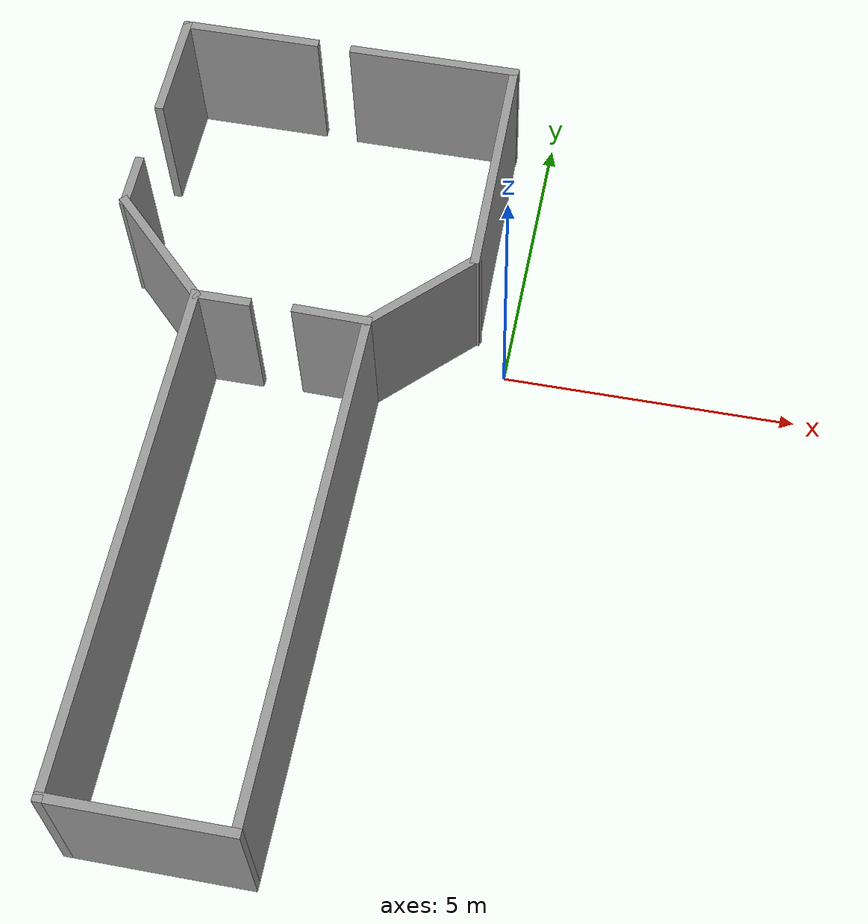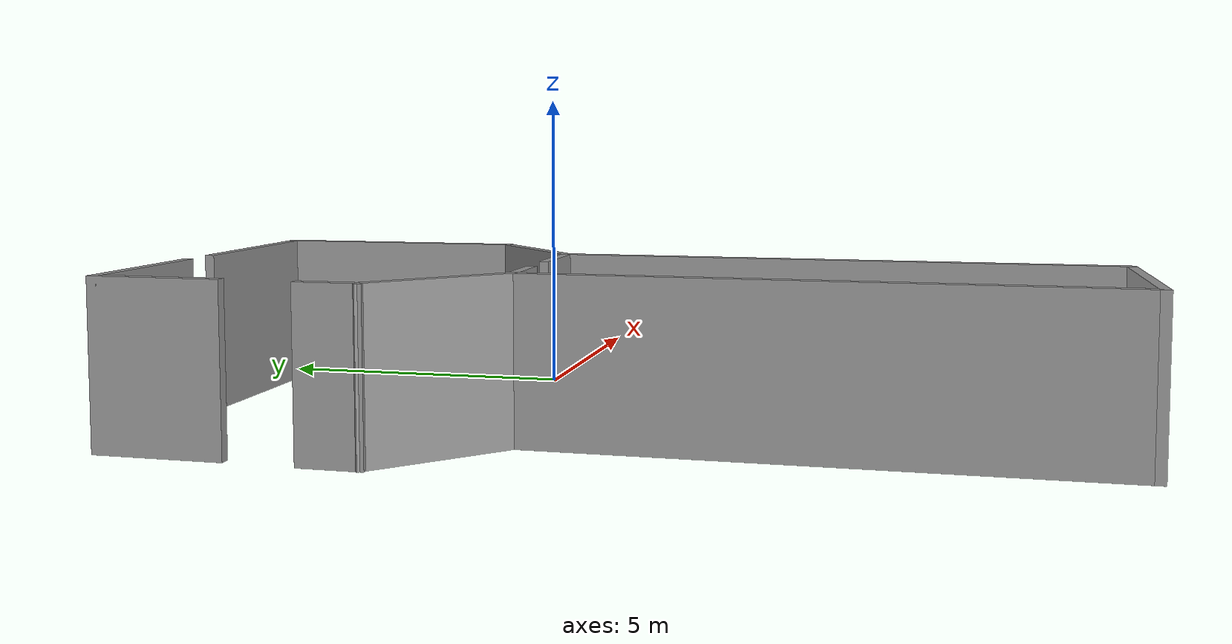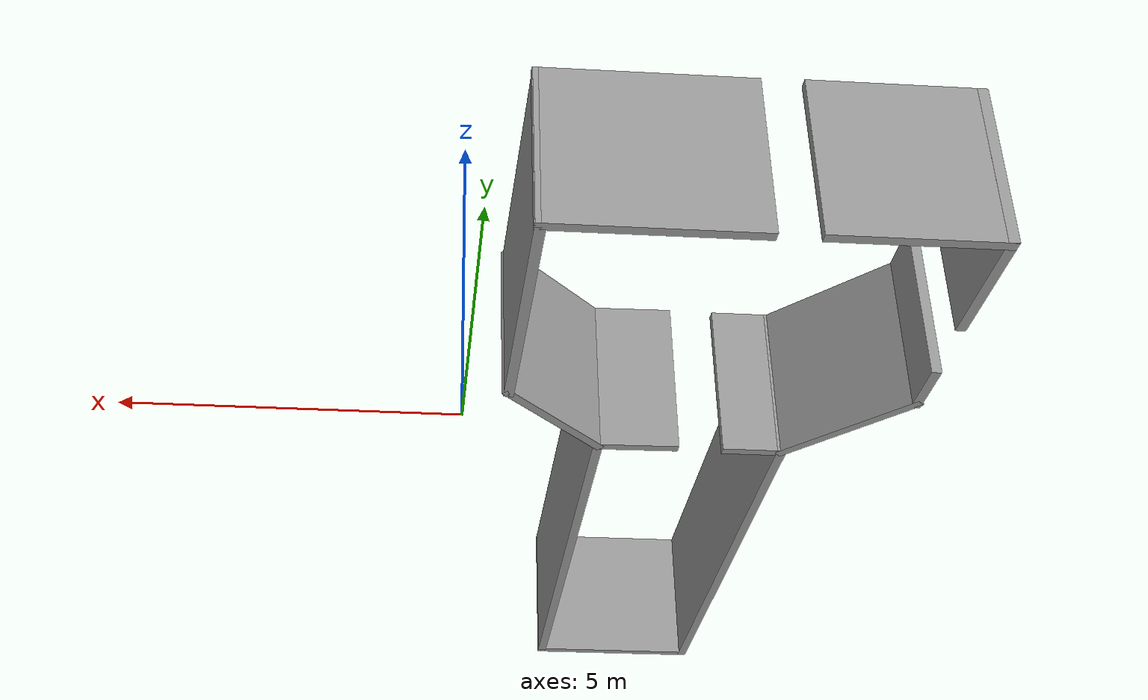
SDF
<?xml version='1.0'?>
<sdf version='1.6'>
  <model name='GazeboKorytarz2'>
    <pose frame=''>-3.3494 -2.36791 0 0 -0 0</pose>
    <link name='Wall_0'>
      <collision name='Wall_0_Collision'>
        <geometry>
          <box>
            <size>8.75 0.15 2.5</size>
          </box>
        </geometry>
        <pose frame=''>0 0 1.25 0 -0 0</pose>
      </collision>
      <visual name='Wall_0_Visual'>
        <pose frame=''>0 0 1.25 0 -0 0</pose>
        <geometry>
          <box>
            <size>8.75 0.15 2.5</size>
          </box>
        </geometry>
        <material>
          <script>
            <uri>file://media/materials/scripts/gazebo.material</uri>
            <name>Gazebo/Grey</name>
          </script>
          <ambient>1 1 1 1</ambient>
        </material>
        <meta>
          <layer>0</layer>
        </meta>
      </visual>
      <pose frame=''>1.2294 -2.76209 0 0 -0 -1.5708</pose>
    </link>
    <link name='Wall_11'>
      <collision name='Wall_11_Collision'>
        <geometry>
          <box>
            <size>2 0.15 2.5</size>
          </box>
        </geometry>
        <pose frame=''>0 0 1.25 0 -0 0</pose>
      </collision>
      <visual name='Wall_11_Visual'>
        <pose frame=''>0 0 1.25 0 -0 0</pose>
        <geometry>
          <box>
            <size>2 0.15 2.5</size>
          </box>
        </geometry>
        <material>
          <script>
            <uri>file://media/materials/scripts/gazebo.material</uri>
            <name>Gazebo/Grey</name>
          </script>
          <ambient>1 1 1 1</ambient>
        </material>
        <meta>
          <layer>0</layer>
        </meta>
      </visual>
      <pose frame=''>-3.20954 6.13708 0 0 -0 1.57087</pose>
    </link>
    <link name='Wall_14'>
      <collision name='Wall_14_Collision'>
        <geometry>
          <box>
            <size>1 0.15 2.5</size>
          </box>
        </geometry>
        <pose frame=''>0 0 1.25 0 -0 0</pose>
      </collision>
      <visual name='Wall_14_Visual'>
        <pose frame=''>0 0 1.25 0 -0 0</pose>
        <geometry>
          <box>
            <size>1 0.15 2.5</size>
          </box>
        </geometry>
        <material>
          <script>
            <uri>file://media/materials/scripts/gazebo.material</uri>
            <name>Gazebo/Grey</name>
          </script>
          <ambient>1 1 1 1</ambient>
        </material>
        <meta>
          <layer>0</layer>
        </meta>
      </visual>
      <pose frame=''>-3.24333 3.55623 0 0 -0 1.5708</pose>
    </link>
    <link name='Wall_16'>
      <collision name='Wall_16_Collision'>
        <geometry>
          <box>
            <size>2.45 0.15 2.5</size>
          </box>
        </geometry>
        <pose frame=''>0 0 1.25 0 -0 0</pose>
      </collision>
      <visual name='Wall_16_Visual'>
        <pose frame=''>0 0 1.25 0 -0 0</pose>
        <geometry>
          <box>
            <size>2.45 0.15 2.5</size>
          </box>
        </geometry>
        <material>
          <script>
            <uri>file://media/materials/scripts/gazebo.material</uri>
            <name>Gazebo/Grey</name>
          </script>
          <ambient>1 1 1 1</ambient>
        </material>
        <meta>
          <layer>0</layer>
        </meta>
      </visual>
      <pose frame=''>-2.0596 7.06191 0 0 -0 0</pose>
    </link>
    <link name='Wall_18'>
      <collision name='Wall_18_Collision'>
        <geometry>
          <box>
            <size>2.25 0.15 2.5</size>
          </box>
        </geometry>
        <pose frame=''>0 0 1.25 0 -0 0</pose>
      </collision>
      <visual name='Wall_18_Visual'>
        <pose frame=''>0 0 1.25 0 -0 0</pose>
        <geometry>
          <box>
            <size>2.25 0.15 2.5</size>
          </box>
        </geometry>
        <material>
          <script>
            <uri>file://media/materials/scripts/gazebo.material</uri>
            <name>Gazebo/Grey</name>
          </script>
          <ambient>1 1 1 1</ambient>
        </material>
        <meta>
          <layer>0</layer>
        </meta>
      </visual>
      <pose frame=''>1.97186 2.28037 0 0 -0 0.785398</pose>
    </link>
    <link name='Wall_19'>
      <collision name='Wall_19_Collision'>
        <geometry>
          <box>
            <size>4.17045 0.15 2.5</size>
          </box>
        </geometry>
        <pose frame=''>0 0 1.25 0 -0 0</pose>
      </collision>
      <visual name='Wall_19_Visual'>
        <pose frame=''>0 0 1.25 0 -0 0</pose>
        <geometry>
          <box>
            <size>4.17045 0.15 2.5</size>
          </box>
        </geometry>
        <material>
          <script>
            <uri>file://media/materials/scripts/gazebo.material</uri>
            <name>Gazebo/Grey</name>
          </script>
          <ambient>1 1 1 1</ambient>
        </material>
        <meta>
          <layer>0</layer>
        </meta>
      </visual>
      <pose frame=''>2.68432 5.03284 0 0 -0 1.58572</pose>
    </link>
    <link name='Wall_2'>
      <collision name='Wall_2_Collision'>
        <geometry>
          <box>
            <size>3 0.15 2.5</size>
          </box>
        </geometry>
        <pose frame=''>0 0 1.25 0 -0 0</pose>
      </collision>
      <visual name='Wall_2_Visual'>
        <pose frame=''>0 0 1.25 0 -0 0</pose>
        <geometry>
          <box>
            <size>3 0.15 2.5</size>
          </box>
        </geometry>
        <material>
          <script>
            <uri>file://media/materials/scripts/gazebo.material</uri>
            <name>Gazebo/Grey</name>
          </script>
          <ambient>1 1 1 1</ambient>
        </material>
        <meta>
          <layer>0</layer>
        </meta>
      </visual>
      <pose frame=''>-0.195602 -7.06209 0 0 -0 3.14159</pose>
    </link>
    <link name='Wall_20'>
      <collision name='Wall_20_Collision'>
        <geometry>
          <box>
            <size>3 0.15 2.5</size>
          </box>
        </geometry>
        <pose frame=''>0 0 1.25 0 -0 0</pose>
      </collision>
      <visual name='Wall_20_Visual'>
        <pose frame=''>0 0 1.25 0 -0 0</pose>
        <geometry>
          <box>
            <size>3 0.15 2.5</size>
          </box>
        </geometry>
        <material>
          <script>
            <uri>file://media/materials/scripts/gazebo.material</uri>
            <name>Gazebo/Grey</name>
          </script>
          <ambient>1 1 1 1</ambient>
        </material>
        <meta>
          <layer>0</layer>
        </meta>
      </visual>
      <pose frame=''>1.23932 7.04284 0 0 -0 3.14159</pose>
    </link>
    <link name='Wall_3'>
      <collision name='Wall_3_Collision'>
        <geometry>
          <box>
            <size>8.75 0.15 2.5</size>
          </box>
        </geometry>
        <pose frame=''>0 0 1.25 0 -0 0</pose>
      </collision>
      <visual name='Wall_3_Visual'>
        <pose frame=''>0 0 1.25 0 -0 0</pose>
        <geometry>
          <box>
            <size>8.75 0.15 2.5</size>
          </box>
        </geometry>
        <material>
          <script>
            <uri>file://media/materials/scripts/gazebo.material</uri>
            <name>Gazebo/Grey</name>
          </script>
          <ambient>1 1 1 1</ambient>
        </material>
        <meta>
          <layer>0</layer>
        </meta>
      </visual>
      <pose frame=''>-1.6206 -2.76209 0 0 -0 1.5708</pose>
    </link>
    <link name='Wall_5'>
      <collision name='Wall_5_Collision'>
        <geometry>
          <box>
            <size>1 0.15 2.5</size>
          </box>
        </geometry>
        <pose frame=''>0 0 1.25 0 -0 0</pose>
      </collision>
      <visual name='Wall_5_Visual'>
        <pose frame=''>0 0 1.25 0 -0 0</pose>
        <geometry>
          <box>
            <size>1 0.15 2.5</size>
          </box>
        </geometry>
        <material>
          <script>
            <uri>file://media/materials/scripts/gazebo.material</uri>
            <name>Gazebo/Grey</name>
          </script>
          <ambient>1 1 1 1</ambient>
        </material>
        <meta>
          <layer>0</layer>
        </meta>
      </visual>
      <pose frame=''>-1.1956 1.53791 0 0 -0 0</pose>
    </link>
    <link name='Wall_7'>
      <collision name='Wall_7_Collision'>
        <geometry>
          <box>
            <size>1.31771 0.15 2.5</size>
          </box>
        </geometry>
        <pose frame=''>0 0 1.25 0 -0 0</pose>
      </collision>
      <visual name='Wall_7_Visual'>
        <pose frame=''>0 0 1.25 0 -0 0</pose>
        <geometry>
          <box>
            <size>1.31771 0.15 2.5</size>
          </box>
        </geometry>
        <material>
          <script>
            <uri>file://media/materials/scripts/gazebo.material</uri>
            <name>Gazebo/Grey</name>
          </script>
          <ambient>1 1 1 1</ambient>
        </material>
        <meta>
          <layer>0</layer>
        </meta>
      </visual>
      <pose frame=''>0.645631 1.54801 0 0 -0 -0.017304</pose>
    </link>
    <link name='Wall_9'>
      <collision name='Wall_9_Collision'>
        <geometry>
          <box>
            <size>2.43347 0.15 2.5</size>
          </box>
        </geometry>
        <pose frame=''>0 0 1.25 0 -0 0</pose>
      </collision>
      <visual name='Wall_9_Visual'>
        <pose frame=''>0 0 1.25 0 -0 0</pose>
        <geometry>
          <box>
            <size>2.43347 0.15 2.5</size>
          </box>
        </geometry>
        <material>
          <script>
            <uri>file://media/materials/scripts/gazebo.material</uri>
            <name>Gazebo/Grey</name>
          </script>
          <ambient>1 1 1 1</ambient>
        </material>
        <meta>
          <layer>0</layer>
        </meta>
      </visual>
      <pose frame=''>-2.43197 2.34118 0 0 -0 -0.780386</pose>
    </link>
    <static>1</static>
  </model>
</sdf>
